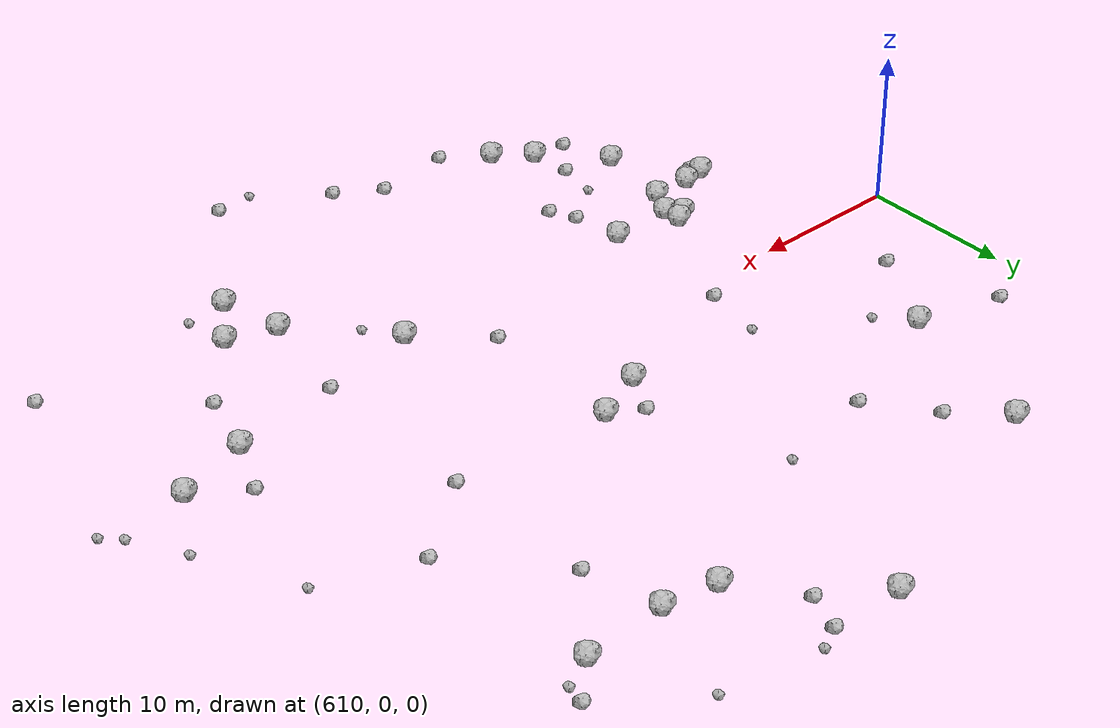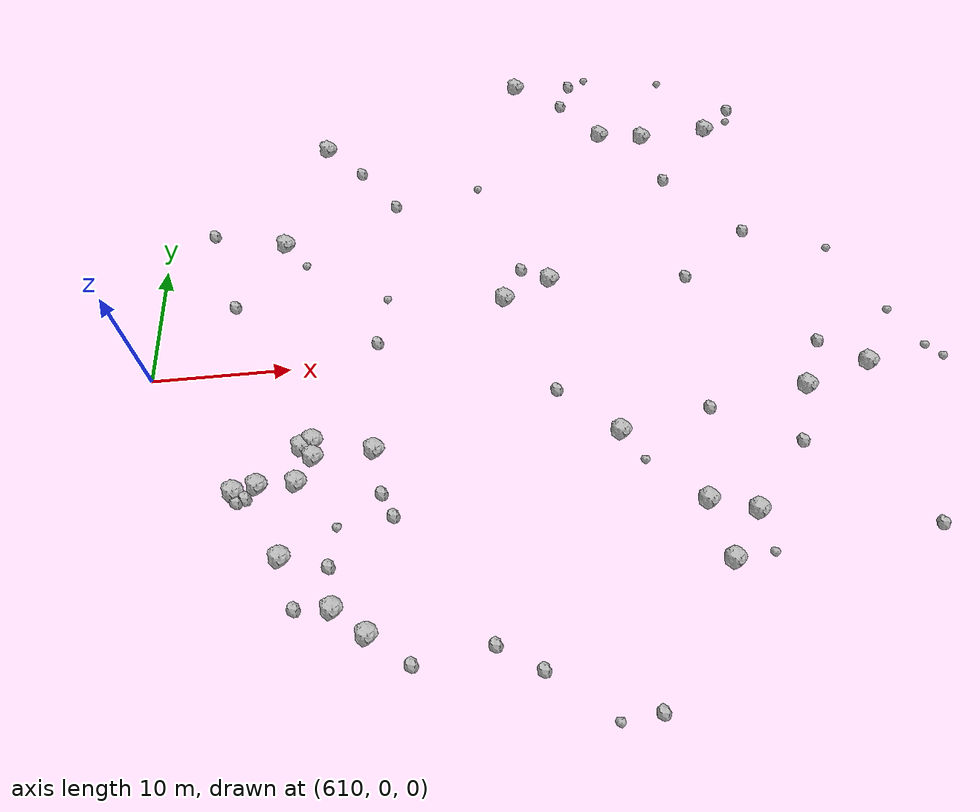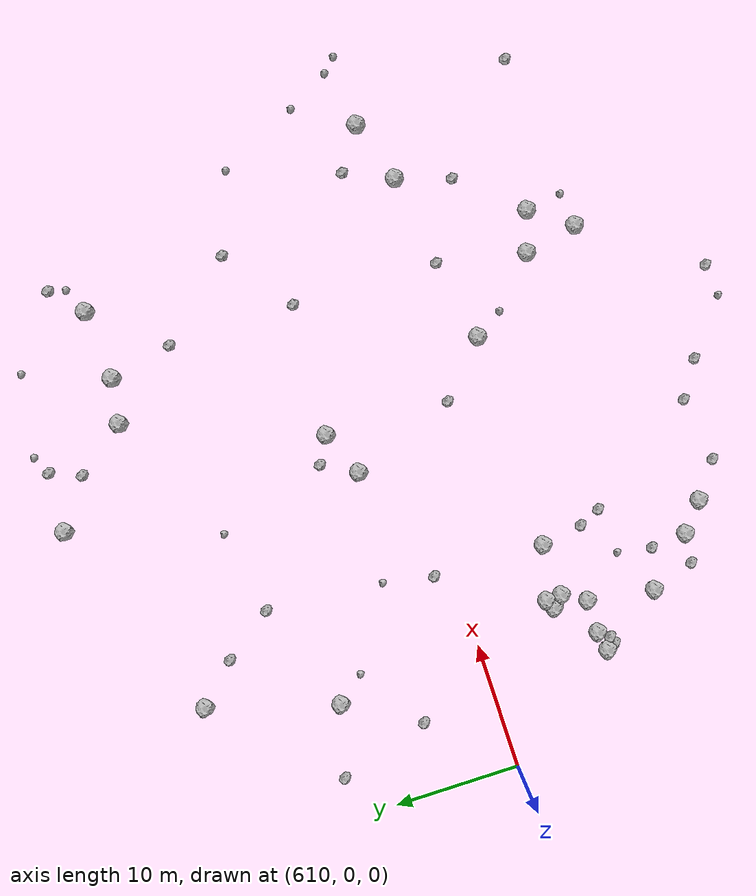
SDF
<sdf version="1.6">
 <world name="default">
  <include><uri>model://sun</uri></include>
  <model name="rock1_16_3">
   <include><uri>model://rock1</uri><pose>649.045758537118 20.857789743210958 0.5 0 0 0</pose></include>
  </model>
  <model name="rock1_16_4">
   <include><uri>model://rock1</uri><pose>636.0047010866873 4.7136962912527025 0.5 0 0 0</pose></include>
  </model>
  <model name="rock1_16_5">
   <include><uri>model://rock1</uri><pose>625.6324254791128 -19.99726473571603 0.5 0 0 0</pose></include>
  </model>
  <model name="rock1_16_6">
   <include><uri>model://rock1</uri><pose>621.1297786359299 -6.5857823879825474 0.5 0 0 0</pose></include>
  </model>
  <model name="rock1_16_7">
   <include><uri>model://rock1</uri><pose>620.8698948044052 -9.258843924282296 0.5 0 0 0</pose></include>
  </model>
  <model name="rock1_16_8">
   <include><uri>model://rock1</uri><pose>626.0925938372116 -7.290420982382244 0.5 0 0 0</pose></include>
  </model>
  <model name="rock1_16_9">
   <include><uri>model://rock1</uri><pose>654.6583767280249 21.228798074005326 0.5 0 0 0</pose></include>
  </model>
  <model name="rock1_16_10">
   <include><uri>model://rock1</uri><pose>621.9217775683528 -7.433213633135189 0.5 0 0 0</pose></include>
  </model>
  <model name="rock1_16_11">
   <include><uri>model://rock1</uri><pose>657.0557131579467 -5.103443499213505 0.5 0 0 0</pose></include>
  </model>
  <model name="rock1_16_12">
   <include><uri>model://rock1</uri><pose>639.5777669463324 6.239646063032907 0.5 0 0 0</pose></include>
  </model>
  <model name="rock1_16_13">
   <include><uri>model://rock1</uri><pose>616.693944414688 -9.550103723496786 0.5 0 0 0</pose></include>
  </model>
  <model name="rock1_16_14">
   <include><uri>model://rock1</uri><pose>621.8593063734196 -6.1857429886965 0.5 0 0 0</pose></include>
  </model>
  <model name="rock1_16_15">
   <include><uri>model://rock1</uri><pose>648.2977185240616 -13.169036764179062 0.5 0 0 0</pose></include>
  </model>
  <model name="rock1_16_16">
   <include><uri>model://rock1</uri><pose>645.4693324783825 21.433888861898062 0.5 0 0 0</pose></include>
  </model>
  <model name="rock1_16_17">
   <include><uri>model://rock1</uri><pose>651.4740565306633 -14.201588901594064 0.5 0 0 0</pose></include>
  </model>
  <model name="rock1_16_18">
   <include><uri>model://rock1</uri><pose>638.7297791663648 28.118807397370702 0.5 0 0 0</pose></include>
  </model>
  <model name="rock1_16_19">
   <include><uri>model://rock1</uri><pose>620.0435504752911 -14.498440584618423 0.5 0 0 0</pose></include>
  </model>
  <model name="rock1_16_20">
   <include><uri>model://rock1</uri><pose>623.4654012432229 -18.175637612161758 0.5 0 0 0</pose></include>
  </model>
  <model name="rock1_16_21">
   <include><uri>model://rock1</uri><pose>622.1766001289653 21.893842604115136 0.5 0 0 0</pose></include>
  </model>
  <model name="rock1_16_22">
   <include><uri>model://rock1</uri><pose>619.1291755211918 11.671122708235828 0.5 0 0 0</pose></include>
  </model>
  <model name="rock1_16_23">
   <include><uri>model://rock1</uri><pose>618.2544680547657 -9.24044314050208 0.5 0 0 0</pose></include>
  </model>
  <model name="rock1_16_24">
   <include><uri>model://rock1</uri><pose>643.2114950723756 -7.470566737365434 0.5 0 0 0</pose></include>
  </model>
  <model name="rock1_16_25">
   <include><uri>model://rock1</uri><pose>649.1736553701247 -17.40878926553501 0.5 0 0 0</pose></include>
  </model>
  <model name="rock1_16_26">
   <include><uri>model://rock1</uri><pose>662.0055825858639 -3.5401238933594144 0.5 0 0 0</pose></include>
  </model>
  <model name="rock2_16_0">
   <include><uri>model://rock2</uri><pose>628.3078086498608 -22.07861806654122 0.3 0 0 0</pose></include>
  </model>
  <model name="rock2_16_1">
   <include><uri>model://rock2</uri><pose>625.0469196977058 18.926468287108264 0.3 0 0 0</pose></include>
  </model>
  <model name="rock2_16_2">
   <include><uri>model://rock2</uri><pose>617.511035374394 -10.095555882357047 0.3 0 0 0</pose></include>
  </model>
  <model name="rock2_16_3">
   <include><uri>model://rock2</uri><pose>627.8577429903052 15.00006299066336 0.3 0 0 0</pose></include>
  </model>
  <model name="rock2_16_4">
   <include><uri>model://rock2</uri><pose>657.086311980472 23.561601737490832 0.3 0 0 0</pose></include>
  </model>
  <model name="rock2_16_5">
   <include><uri>model://rock2</uri><pose>637.4546383433043 7.433416814792437 0.3 0 0 0</pose></include>
  </model>
  <model name="rock2_16_6">
   <include><uri>model://rock2</uri><pose>655.4931804825129 9.672102777014686 0.3 0 0 0</pose></include>
  </model>
  <model name="rock2_16_7">
   <include><uri>model://rock2</uri><pose>650.0764730851278 15.789451254226378 0.3 0 0 0</pose></include>
  </model>
  <model name="rock2_16_8">
   <include><uri>model://rock2</uri><pose>627.3399574290287 -12.294359182625687 0.3 0 0 0</pose></include>
  </model>
  <model name="rock2_16_9">
   <include><uri>model://rock2</uri><pose>623.1626744306199 -15.38615425488549 0.3 0 0 0</pose></include>
  </model>
  <model name="rock2_16_10">
   <include><uri>model://rock2</uri><pose>636.2810288328845 -23.166243555977786 0.3 0 0 0</pose></include>
  </model>
  <model name="rock2_16_11">
   <include><uri>model://rock2</uri><pose>615.6148792039429 5.929402657703598 0.3 0 0 0</pose></include>
  </model>
  <model name="rock2_16_12">
   <include><uri>model://rock2</uri><pose>650.0948912685116 5.546536561723741 0.3 0 0 0</pose></include>
  </model>
  <model name="rock2_16_13">
   <include><uri>model://rock2</uri><pose>633.4686587720313 -21.385653527989827 0.3 0 0 0</pose></include>
  </model>
  <model name="rock2_16_14">
   <include><uri>model://rock2</uri><pose>613.4149627134918 13.192256468896751 0.3 0 0 0</pose></include>
  </model>
  <model name="rock2_16_15">
   <include><uri>model://rock2</uri><pose>626.5660463683079 -10.59738747059243 0.3 0 0 0</pose></include>
  </model>
  <model name="rock2_16_16">
   <include><uri>model://rock2</uri><pose>649.725197173435 -6.185212039978573 0.3 0 0 0</pose></include>
  </model>
  <model name="rock2_16_17">
   <include><uri>model://rock2</uri><pose>663.3099942092257 -16.307581395181323 0.3 0 0 0</pose></include>
  </model>
  <model name="rock2_16_18">
   <include><uri>model://rock2</uri><pose>655.6670170754029 -9.428651364116213 0.3 0 0 0</pose></include>
  </model>
  <model name="rock2_16_19">
   <include><uri>model://rock2</uri><pose>642.4646216290457 25.473588058726087 0.3 0 0 0</pose></include>
  </model>
  <model name="rock2_16_20">
   <include><uri>model://rock2</uri><pose>616.9270845572973 -10.27399532055307 0.3 0 0 0</pose></include>
  </model>
  <model name="rock2_16_21">
   <include><uri>model://rock2</uri><pose>621.0723581898753 -17.96239339019669 0.3 0 0 0</pose></include>
  </model>
  <model name="rock2_16_22">
   <include><uri>model://rock2</uri><pose>643.4535801464724 27.937188978385045 0.3 0 0 0</pose></include>
  </model>
  <model name="rock2_16_23">
   <include><uri>model://rock2</uri><pose>626.3191390164437 1.6119074949868057 0.3 0 0 0</pose></include>
  </model>
  <model name="rock2_16_24">
   <include><uri>model://rock2</uri><pose>639.0856525295583 -3.677476062086619 0.3 0 0 0</pose></include>
  </model>
  <model name="rock2_16_25">
   <include><uri>model://rock2</uri><pose>658.7635763704318 -1.3466915766197047 0.3 0 0 0</pose></include>
  </model>
  <model name="rock2_16_26">
   <include><uri>model://rock2</uri><pose>643.0164840931546 -26.288108612746125 0.3 0 0 0</pose></include>
  </model>
  <model name="rock3_16_0">
   <include><uri>model://rock3</uri><pose>623.6098619870065 -12.71719259037721 0.2 0 0 0</pose></include>
  </model>
  <model name="rock3_16_1">
   <include><uri>model://rock3</uri><pose>661.7570547476193 7.308222331687965 0.2 0 0 0</pose></include>
  </model>
  <model name="rock3_16_2">
   <include><uri>model://rock3</uri><pose>651.8605575813864 -17.189716442670562 0.2 0 0 0</pose></include>
  </model>
  <model name="rock3_16_3">
   <include><uri>model://rock3</uri><pose>644.9439063577883 28.65059869034009 0.2 0 0 0</pose></include>
  </model>
  <model name="rock3_16_4">
   <include><uri>model://rock3</uri><pose>634.588529622053 16.282382758128904 0.2 0 0 0</pose></include>
  </model>
  <model name="rock3_16_5">
   <include><uri>model://rock3</uri><pose>620.7776141094843 9.483082889632769 0.2 0 0 0</pose></include>
  </model>
  <model name="rock3_16_6">
   <include><uri>model://rock3</uri><pose>627.0627759516693 5.588981723171074 0.2 0 0 0</pose></include>
  </model>
  <model name="rock3_16_7">
   <include><uri>model://rock3</uri><pose>644.5493211996177 -9.78952862070787 0.2 0 0 0</pose></include>
  </model>
  <model name="rock3_16_8">
   <include><uri>model://rock3</uri><pose>656.7085798515026 22.187606817952037 0.2 0 0 0</pose></include>
  </model>
  <model name="rock3_16_9">
   <include><uri>model://rock3</uri><pose>664.7780876831524 0.9372789060289755 0.2 0 0 0</pose></include>
  </model>
  <model name="rock3_16_10">
   <include><uri>model://rock3</uri><pose>667.6669692308944 -3.5219549566345414 0.2 0 0 0</pose></include>
  </model>
  <model name="rock3_16_11">
   <include><uri>model://rock3</uri><pose>651.5031779236074 27.586806941396034 0.2 0 0 0</pose></include>
  </model>
  <model name="rock3_16_12">
   <include><uri>model://rock3</uri><pose>666.6260972030232 -2.4623014347984444 0.2 0 0 0</pose></include>
  </model>
  <model name="rock3_16_13">
   <include><uri>model://rock3</uri><pose>640.416650159795 -26.560399371549824 0.2 0 0 0</pose></include>
  </model>
 </world>
</sdf>
